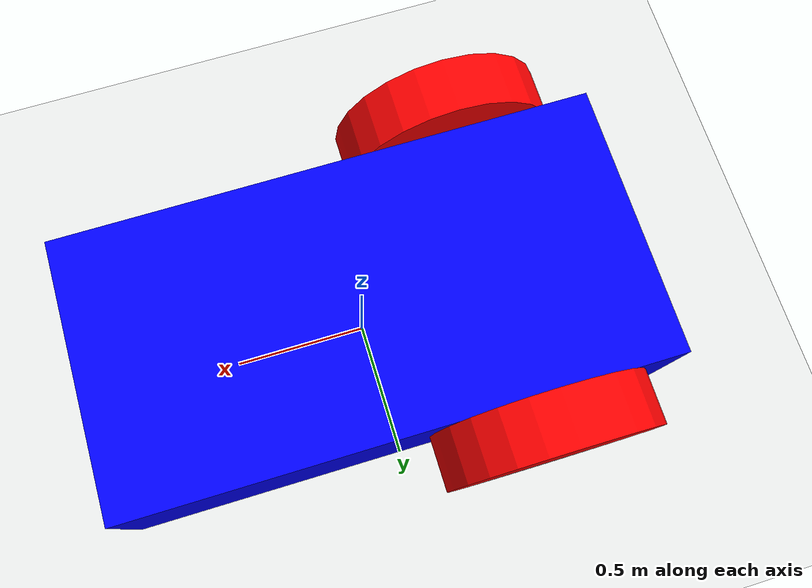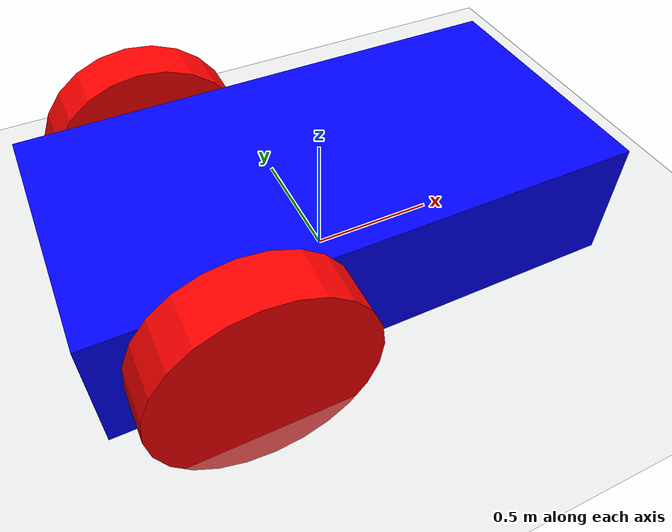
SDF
<?xml version="1.0" ?>
<sdf version="1.8">
    <world name="car_world">
        <!-- Physics settings -->
        <physics name="1ms" type="ode">
            <max_step_size>0.001</max_step_size>
            <real_time_update_rate>1000</real_time_update_rate>
        </physics>

        <!-- Plugins -->
        <plugin filename="libignition-gazebo-physics-system.so" name="ignition::gazebo::systems::Physics" />
        <plugin filename="libignition-gazebo-user-commands-system.so" name="ignition::gazebo::systems::UserCommands" />
        <plugin filename="libignition-gazebo-scene-broadcaster-system.so" name="ignition::gazebo::systems::SceneBroadcaster" />

        <!-- Directional Light -->
        <light type="directional" name="sun">
            <cast_shadows>true</cast_shadows>
            <pose>0 0 10 0 0 0</pose>
            <diffuse>0.8 0.8 0.8 1</diffuse>
            <specular>0.2 0.2 0.2 1</specular>
            <attenuation>
                <range>1000</range>
                <constant>0.9</constant>
                <linear>0.01</linear>
                <quadratic>0.001</quadratic>
            </attenuation>
            <direction>-0.5 0.1 -0.9</direction>
        </light>

        <!-- Ground Plane -->
        <model name="ground_plane">
            <static>true</static>
            <link name="link">
                <collision name="collision">
                    <geometry>
                        <plane>
                            <normal>0 0 1</normal>
                            <size>100 100</size>
                        </plane>
                    </geometry>
                </collision>
                <visual name="visual">
                    <geometry>
                        <plane>
                            <normal>0 0 1</normal>
                            <size>100 100</size>
                        </plane>
                    </geometry>
                    <material>
                        <ambient>0.8 0.8 0.8 1</ambient>
                        <diffuse>0.8 0.8 0.8 1</diffuse>
                        <specular>0.8 0.8 0.8 1</specular>
                    </material>
                </visual>
            </link>
        </model>

        <!-- Vehicle Model -->
        <model name="vehicle_blue" canonical_link="chassis">
            <pose>0 0 0 0 0 0</pose>
            <link name="chassis">
                <pose>0 0 0.25 0 0 0</pose>
                <visual name="visual">
                    <geometry>
                        <box>
                            <size>2.0 1.0 0.5</size>
                        </box>
                    </geometry>
                    <material>
                        <ambient>0.0 0.0 1.0 1</ambient>
                        <diffuse>0.0 0.0 1.0 1</diffuse>
                        <specular>0.0 0.0 1.0 1</specular>
                    </material>
                </visual>
                <collision name="collision">
                    <geometry>
                        <box>
                            <size>2.0 1.0 0.5</size>
                        </box>
                    </geometry>
                </collision>
            </link>
                <link name='left_wheel'>
                    <pose relative_to="chassis">-0.5 0.6 0 -1.5707 0 0</pose>
                    <inertial>
                        <mass>1</mass>
                        <inertia>
                            <ixx>0.043333</ixx>
                            <ixy>0</ixy>
                            <ixz>0</ixz>
                            <iyy>0.043333</iyy>
                            <iyz>0</iyz>
                            <izz>0.08</izz>
                        </inertia>
                    </inertial>
                    <visual name='visual'>
                        <geometry>
                            <cylinder>
                                <radius>0.4</radius>
                                <length>0.2</length>
                            </cylinder>
                        </geometry>
                        <material>
                            <ambient>1.0 0.0 0.0 1</ambient>
                            <diffuse>1.0 0.0 0.0 1</diffuse>
                            <specular>1.0 0.0 0.0 1</specular>
                        </material>
                    </visual>
                    <collision name='collision'>
                        <geometry>
                            <cylinder>
                                <radius>0.4</radius>
                                <length>0.2</length>
                            </cylinder>
                        </geometry>
                    </collision>
                </link>
<!--The same as left wheel but with different position-->
                <link name='right_wheel'>
                    <pose relative_to="chassis">-0.5 -0.6 0 -1.5707 0 0</pose> <!--angles are in radian-->
                    <inertial>
                        <mass>1</mass>
                        <inertia>
                            <ixx>0.043333</ixx>
                            <ixy>0</ixy>
                            <ixz>0</ixz>
                            <iyy>0.043333</iyy>
                            <iyz>0</iyz>
                            <izz>0.08</izz>
                        </inertia>
                    </inertial>
                    <visual name='visual'>
                        <geometry>
                            <cylinder>
                                <radius>0.4</radius>
                                <length>0.2</length>
                            </cylinder>
                        </geometry>
                        <material>
                            <ambient>1.0 0.0 0.0 1</ambient>
                            <diffuse>1.0 0.0 0.0 1</diffuse>
                            <specular>1.0 0.0 0.0 1</specular>
                        </material>
                    </visual>
                    <collision name='collision'>
                        <geometry>
                            <cylinder>
                                <radius>0.4</radius>
                                <length>0.2</length>
                            </cylinder>
                        </geometry>
                    </collision>
                </link>
                <frame name="caster_frame" attached_to='chassis'>
                    <pose>0.8 0 -0.2 0 0 0</pose>
                </frame>

                <!--caster wheel-->
                <link name='caster'>
                    <pose relative_to='caster_frame'/>
                    <inertial>
                        <mass>1</mass>
                        <inertia>
                            <ixx>0.016</ixx>
                            <ixy>0</ixy>
                            <ixz>0</ixz>
                            <iyy>0.016</iyy>
                            <iyz>0</iyz>
                            <izz>0.016</izz>
                        </inertia>
                    </inertial>
                    <visual name='visual'>
                        <geometry>
                            <sphere>
                                <radius>0.2</radius>
                            </sphere>
                        </geometry>
                        <material>
                            <ambient>0.0 1 0.0 1</ambient>
                            <diffuse>0.0 1 0.0 1</diffuse>
                            <specular>0.0 1 0.0 1</specular>
                        </material>
                    </visual>
                    <collision name='collision'>
                        <geometry>
                            <sphere>
                                <radius>0.2</radius>
                            </sphere>
                        </geometry>
                    </collision>
                </link>

                <joint name='left_wheel_joint' type='revolute'>
                    <pose relative_to='left_wheel'/>
                        <parent>chassis</parent>
                        <child>left_wheel</child>
                        <axis>
                            <xyz expressed_in='__model__'>0 1 0</xyz> <!--can be defined as any frame or even arbitrary frames-->
                            <limit>
                                <lower>-1.79769e+308</lower>    <!--negative infinity-->
                                <upper>1.79769e+308</upper>     <!--positive infinity-->
                            </limit>
                        </axis>
                </joint>

                <joint name='right_wheel_joint' type='revolute'>
                    <pose relative_to='right_wheel'/>
                    <parent>chassis</parent>
                    <child>right_wheel</child>
                    <axis>
                        <xyz expressed_in='__model__'>0 1 0</xyz>
                        <limit>
                            <lower>-1.79769e+308</lower>    <!--negative infinity-->
                            <upper>1.79769e+308</upper>     <!--positive infinity-->
                        </limit >
                    </axis  >
                </joint>
                <joint name='caster_wheel' type='ball'>
                    <parent>chassis</parent>
                    <child>caster</child>
                </joint>
                <plugin
                    filename="libignition-gazebo-diff-drive-system.so"
                    name="ignition::gazebo::systems::DiffDrive">
                    <left_joint>left_wheel_joint</left_joint>
                    <right_joint>right_wheel_joint</right_joint>
                    <wheel_separation>1.2</wheel_separation>
                    <wheel_radius>0.4</wheel_radius>
                    <odom_publish_frequency>1</odom_publish_frequency>
                    <topic>cmd_vel</topic>
                </plugin>

                <!-- Moving Forward-->
                <plugin filename="libignition-gazebo-triggered-publisher-system.so"
                        name="ignition::gazebo::systems::TriggeredPublisher">
                    <input type="ignition.msgs.Int32" topic="/keyboard/keypress">
                        <match field="data">16777235</match>
                    </input>
                    <output type="ignition.msgs.Twist" topic="/cmd_vel">
                        linear: {x: 0.5}, angular: {z: 0.0}
                    </output>
                </plugin>
                <!-- Moving Backward-->
                <plugin filename="libignition-gazebo-triggered-publisher-system.so"
                        name="ignition::gazebo::systems::TriggeredPublisher">
                    <input type="ignition.msgs.Int32" topic="/keyboard/keypress">
                        <match field="data">16777237</match>
                    </input>
                    <output type="ignition.msgs.Twist" topic="/cmd_vel">
                        linear: {x: -0.5}, angular: {z: 0.0}
                    </output>
                </plugin>

                <!-- Moving Right-->
                <plugin filename="libignition-gazebo-triggered-publisher-system.so"
                        name="ignition::gazebo::systems::TriggeredPublisher">
                    <input type="ignition.msgs.Int32" topic="/keyboard/keypress">
                        <match field="data">16777236</match>
                    </input>
                    <output type="ignition.msgs.Twist" topic="/cmd_vel">
                        linear: {x: 0.0}, angular: {z: -0.5}
                    </output>
                </plugin>
                <!-- Moving Left-->
                <plugin filename="libignition-gazebo-triggered-publisher-system.so"
                        name="ignition::gazebo::systems::TriggeredPublisher">
                    <input type="ignition.msgs.Int32" topic="/keyboard/keypress">
                        <match field="data">16777234</match>
                    </input>
                    <output type="ignition.msgs.Twist" topic="/cmd_vel">
                        linear: {x: 0.0}, angular: {z: 0.5}
                    </output>
                </plugin>

        </model>
    </world>
</sdf>
